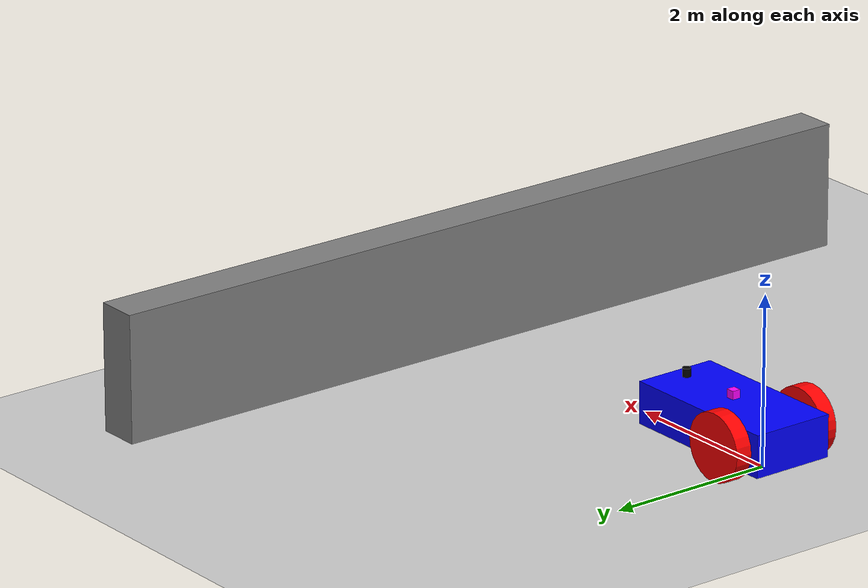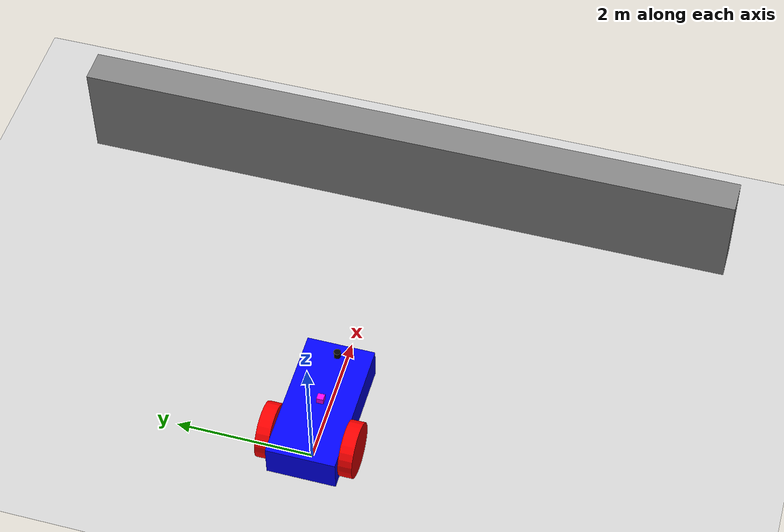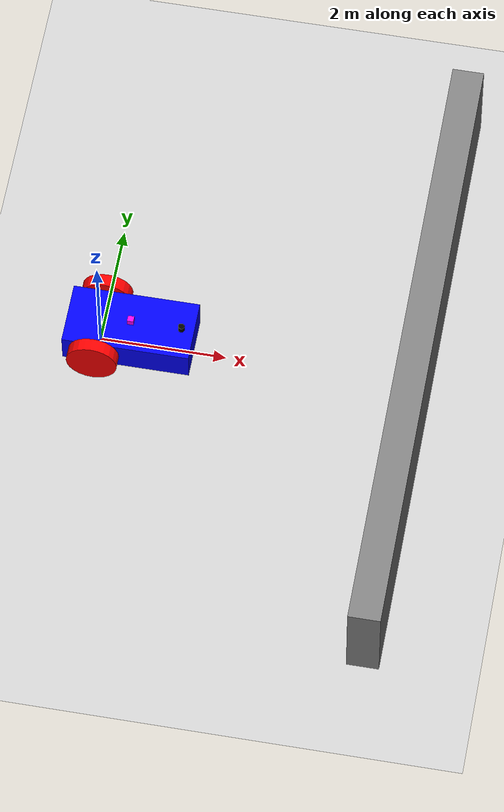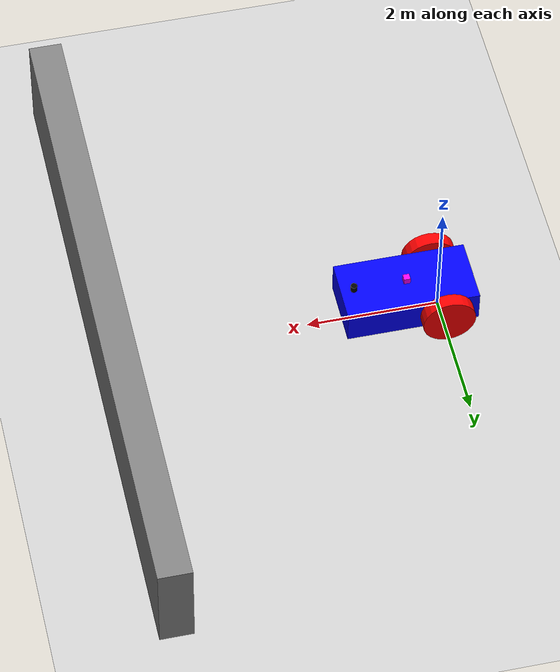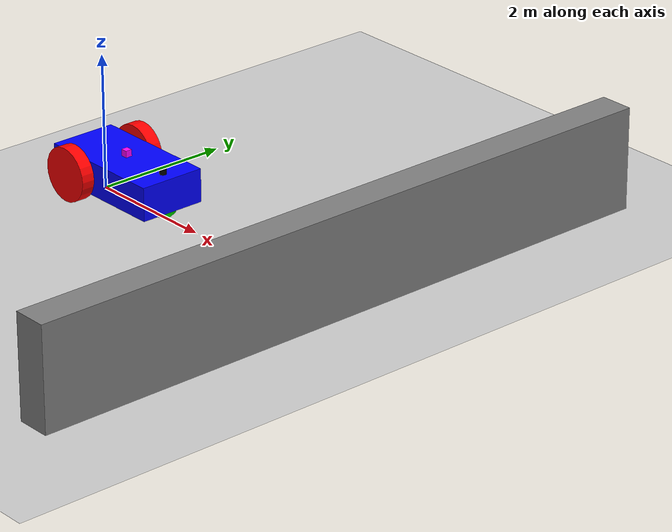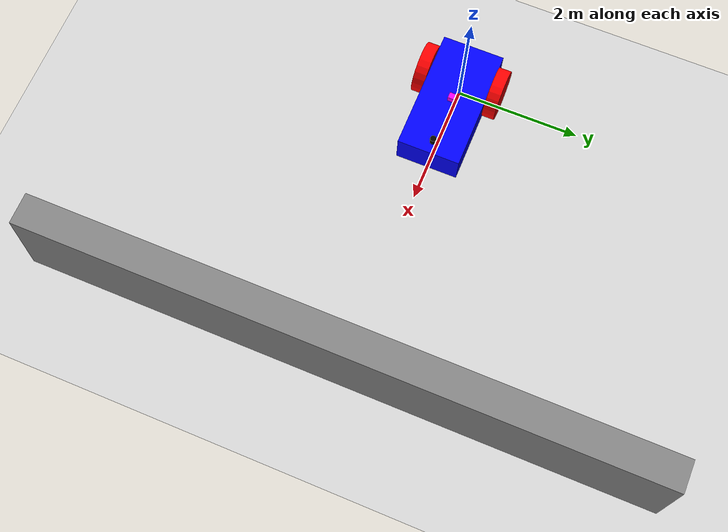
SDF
<?xml version="1.0" ?>
<sdf version="1.10">
    <world name="car_world">
        <physics name="1ms" type="ignored">
            <max_step_size>0.001</max_step_size>
            <real_time_factor>1.0</real_time_factor>
        </physics>

        <!-- System Plugins -->
        <plugin filename="gz-sim-physics-system" name="gz::sim::systems::Physics"></plugin>
        <plugin filename="gz-sim-user-commands-system" name="gz::sim::systems::UserCommands"></plugin>
        <plugin filename="gz-sim-scene-broadcaster-system" name="gz::sim::systems::SceneBroadcaster"></plugin>
        <plugin filename="gz-sim-sensors-system" name="gz::sim::systems::Sensors">
            <render_engine>ogre2</render_engine>
        </plugin>
        <plugin filename="gz-sim-imu-system" name="gz::sim::systems::Imu"></plugin>

        <light type="directional" name="sun">
            <cast_shadows>true</cast_shadows>
            <pose>0 0 10 0 0 0</pose>
            <diffuse>0.8 0.8 0.8 1</diffuse>
            <specular>0.2 0.2 0.2 1</specular>
            <attenuation>
                <range>1000</range>
                <constant>0.9</constant>
                <linear>0.01</linear>
                <quadratic>0.001</quadratic>
            </attenuation>
            <direction>-0.5 0.1 -0.9</direction>
        </light>

        <model name="ground_plane">
            <static>true</static>
            <link name="link">
                <collision name="collision">
                    <geometry><plane><normal>0 0 1</normal></plane></geometry>
                </collision>
                <visual name="visual">
                    <geometry><plane><normal>0 0 1</normal><size>100 100</size></plane></geometry>
                    <material>
                        <ambient>0.8 0.8 0.8 1</ambient>
                        <diffuse>0.8 0.8 0.8 1</diffuse>
                        <specular>0.8 0.8 0.8 1</specular>
                    </material>
                </visual>
            </link>
        </model>

        <!-- Obstacle Wall -->
        <model name='wall'>
            <static>true</static>
            <pose>5 0 0.5 0 0 0</pose>
            <link name='box'>
                <visual name='visual'>
                    <geometry><box><size>0.5 10.0 2.0</size></box></geometry>
                    <material>
                        <ambient>0.5 0.5 0.5 1</ambient>
                        <diffuse>0.5 0.5 0.5 1</diffuse>
                        <specular>0.5 0.5 0.5 1</specular>
                    </material>
                </visual>
                <collision name='collision'>
                    <geometry><box><size>0.5 10.0 2.0</size></box></geometry>
                </collision>
            </link>
        </model>

        <!-- Robot -->
        <model name='vehicle_blue' canonical_link='chassis'>
            <pose relative_to='world'>0 0 0 0 0 0</pose>

            <link name='chassis'>
                <pose relative_to='__model__'>0.5 0 0.4 0 0 0</pose>
                <inertial>
                    <mass>1.14395</mass>
                    <inertia>
                        <ixx>0.095329</ixx><ixy>0</ixy><ixz>0</ixz>
                        <iyy>0.381317</iyy><iyz>0</iyz><izz>0.476646</izz>
                    </inertia>
                </inertial>

                <!-- Main Body Visual -->
                <visual name='visual'>
                    <geometry><box><size>2.0 1.0 0.5</size></box></geometry>
                    <material>
                        <ambient>0.0 0.0 1.0 1</ambient>
                        <diffuse>0.0 0.0 1.0 1</diffuse>
                        <specular>0.0 0.0 1.0 1</specular>
                    </material>
                </visual>

                <!-- ⬇️ NEW: Lidar Physical Visual (Black Cylinder) -->
                <visual name='lidar_visual'>
                    <pose>0.8 0 0.3 0 0 0</pose>
                    <geometry>
                        <cylinder>
                            <radius>0.05</radius>
                            <length>0.1</length>
                        </cylinder>
                    </geometry>
                    <material>
                        <ambient>0 0 0 1</ambient>
                        <diffuse>0 0 0 1</diffuse>
                        <specular>0 0 0 1</specular>
                    </material>
                </visual>

                <!-- ⬇️ NEW: IMU Physical Visual (Purple Box) -->
                <visual name='imu_visual'>
                    <pose>0 0 0.3 0 0 0</pose>
                    <geometry>
                        <box>
                            <size>0.1 0.1 0.1</size>
                        </box>
                    </geometry>
                    <material>
                        <ambient>1 0 1 1</ambient>
                        <diffuse>1 0 1 1</diffuse>
                        <specular>1 0 1 1</specular>
                    </material>
                </visual>

                <collision name='collision'>
                    <geometry><box><size>2.0 1.0 0.5</size></box></geometry>
                </collision>

                <!-- IMU Sensor (Data) -->
                <sensor name="imu_sensor" type="imu">
                    <pose>0 0 0.3 0 0 0</pose>
                    <always_on>1</always_on>
                    <update_rate>1</update_rate>
                    <visualize>true</visualize> <!-- Shows XYZ axis -->
                    <topic>imu</topic>
                </sensor>

                <!-- Lidar Sensor (Data) -->
                <sensor name='gpu_lidar' type='gpu_lidar'>
                    <pose relative_to='chassis'>0.8 0 0.3 0 0 0</pose>
                    <topic>lidar</topic>
                    <update_rate>10</update_rate>
                    <ray>
                        <scan>
                            <horizontal>
                                <samples>640</samples>
                                <resolution>1</resolution>
                                <min_angle>-1.396263</min_angle>
                                <max_angle>1.396263</max_angle>
                            </horizontal>
                            <vertical>
                                <samples>1</samples>
                                <resolution>0.01</resolution>
                                <min_angle>0</min_angle>
                                <max_angle>0</max_angle>
                            </vertical>
                        </scan>
                        <range>
                            <min>0.08</min>
                            <max>10.0</max>
                            <resolution>0.01</resolution>
                        </range>
                    </ray>
                    <always_on>1</always_on>
                    <visualize>true</visualize> <!-- Shows Blue/Orange Rays -->
                    <gz_frame_id>vehicle_blue/lidar_link</gz_frame_id>
                </sensor>
            </link>

            <link name='left_wheel'>
                <pose relative_to="chassis">-0.5 0.6 0 -1.5707 0 0</pose>
                <inertial>
                    <mass>1</mass>
                    <inertia>
                        <ixx>0.043333</ixx><ixy>0</ixy><ixz>0</ixz>
                        <iyy>0.043333</iyy><iyz>0</iyz><izz>0.08</izz>
                    </inertia>
                </inertial>
                <visual name='visual'>
                    <geometry><cylinder><radius>0.4</radius><length>0.2</length></cylinder></geometry>
                    <material>
                        <ambient>1.0 0.0 0.0 1</ambient>
                        <diffuse>1.0 0.0 0.0 1</diffuse>
                        <specular>1.0 0.0 0.0 1</specular>
                    </material>
                </visual>
                <collision name='collision'>
                    <geometry><cylinder><radius>0.4</radius><length>0.2</length></cylinder></geometry>
                </collision>
            </link>

            <link name='right_wheel'>
                <pose relative_to="chassis">-0.5 -0.6 0 -1.5707 0 0</pose>
                <inertial>
                    <mass>1</mass>
                    <inertia>
                        <ixx>0.043333</ixx><ixy>0</ixy><ixz>0</ixz>
                        <iyy>0.043333</iyy><iyz>0</iyz><izz>0.08</izz>
                    </inertia>
                </inertial>
                <visual name='visual'>
                    <geometry><cylinder><radius>0.4</radius><length>0.2</length></cylinder></geometry>
                    <material>
                        <ambient>1.0 0.0 0.0 1</ambient>
                        <diffuse>1.0 0.0 0.0 1</diffuse>
                        <specular>1.0 0.0 0.0 1</specular>
                    </material>
                </visual>
                <collision name='collision'>
                    <geometry><cylinder><radius>0.4</radius><length>0.2</length></cylinder></geometry>
                </collision>
            </link>

            <frame name="caster_frame" attached_to='chassis'>
                <pose>0.8 0 -0.2 0 0 0</pose>
            </frame>
            <link name='caster'>
                <pose relative_to='caster_frame'/>
                <inertial>
                    <mass>1</mass>
                    <inertia>
                        <ixx>0.016</ixx><ixy>0</ixy><ixz>0</ixz>
                        <iyy>0.016</iyy><iyz>0</iyz><izz>0.016</izz>
                    </inertia>
                </inertial>
                <visual name='visual'>
                    <geometry><sphere><radius>0.2</radius></sphere></geometry>
                    <material>
                        <ambient>0.0 1 0.0 1</ambient>
                        <diffuse>0.0 1 0.0 1</diffuse>
                        <specular>0.0 1 0.0 1</specular>
                    </material>
                </visual>
                <collision name='collision'>
                    <geometry><sphere><radius>0.2</radius></sphere></geometry>
                </collision>
            </link>

            <joint name='left_wheel_joint' type='revolute'>
                <pose relative_to='left_wheel'/>
                <parent>chassis</parent>
                <child>left_wheel</child>
                <axis>
                    <xyz expressed_in='__model__'>0 1 0</xyz>
                    <limit><lower>-1.79769e+308</lower><upper>1.79769e+308</upper></limit>
                </axis>
            </joint>

            <joint name='right_wheel_joint' type='revolute'>
                <pose relative_to='right_wheel'/>
                <parent>chassis</parent>
                <child>right_wheel</child>
                <axis>
                    <xyz expressed_in='__model__'>0 1 0</xyz>
                    <limit><lower>-1.79769e+308</lower><upper>1.79769e+308</upper></limit>
                </axis>
            </joint>

            <joint name='caster_wheel' type='ball'>
                <parent>chassis</parent>
                <child>caster</child>
            </joint>

            <plugin
                filename="gz-sim-diff-drive-system"
                name="gz::sim::systems::DiffDrive">
                <left_joint>left_wheel_joint</left_joint>
                <right_joint>right_wheel_joint</right_joint>
                <wheel_separation>1.2</wheel_separation>
                <wheel_radius>0.4</wheel_radius>
                <odom_publish_frequency>50</odom_publish_frequency>
                <topic>cmd_vel</topic>
            </plugin>

        </model>
    </world>
</sdf>
